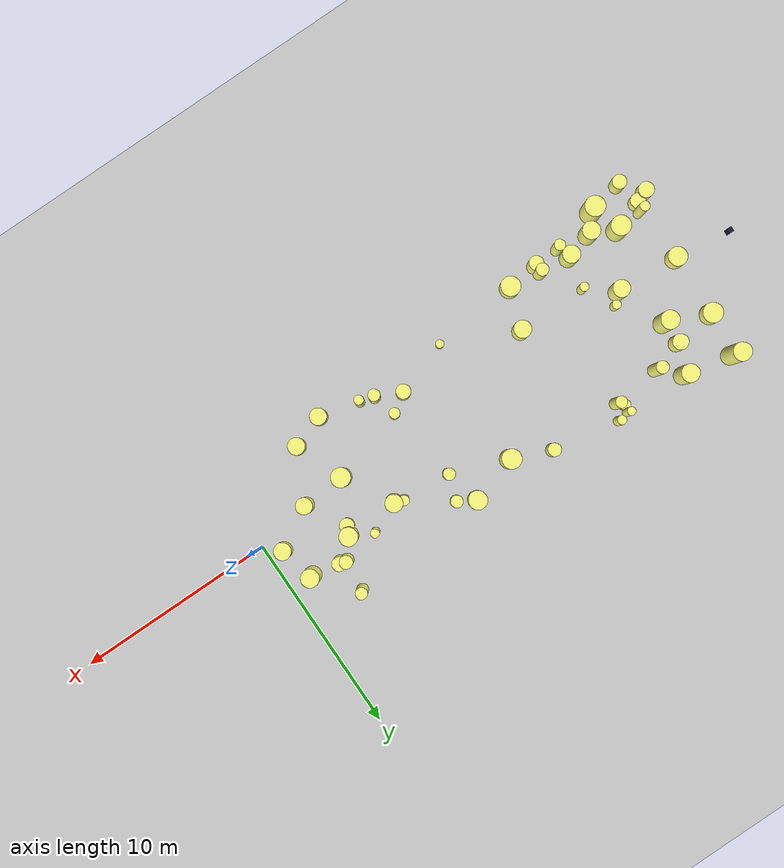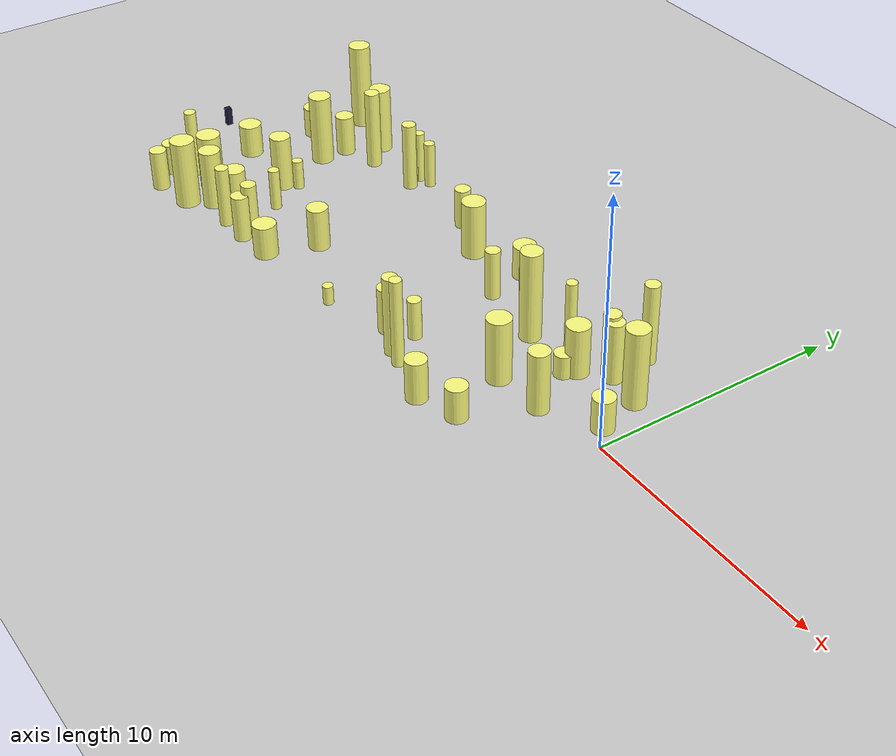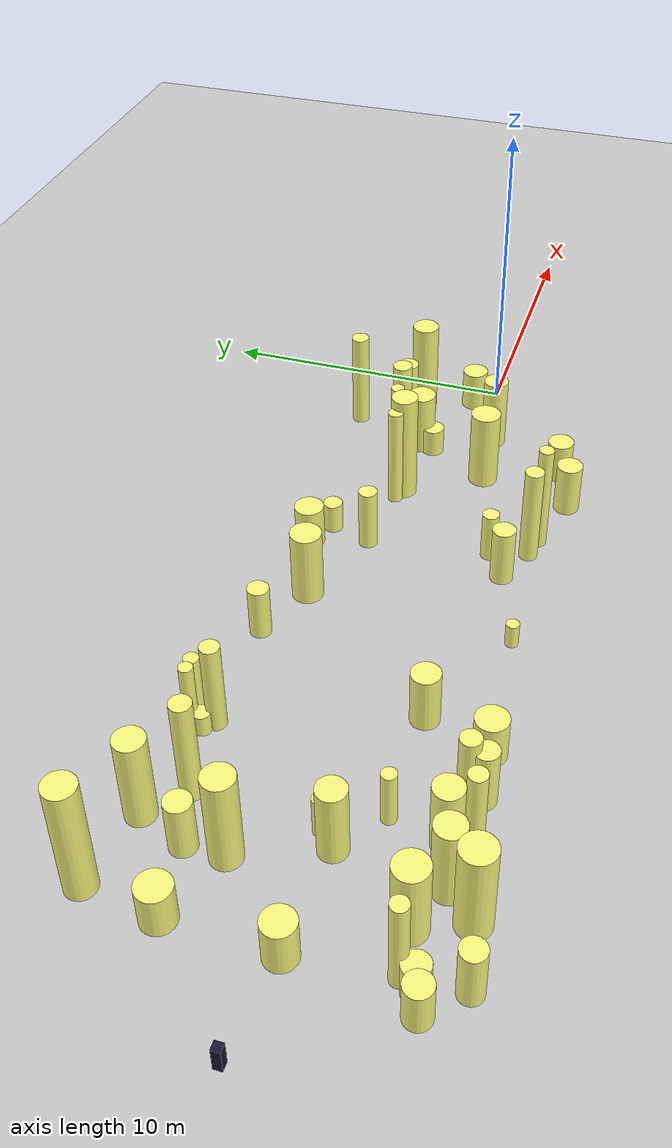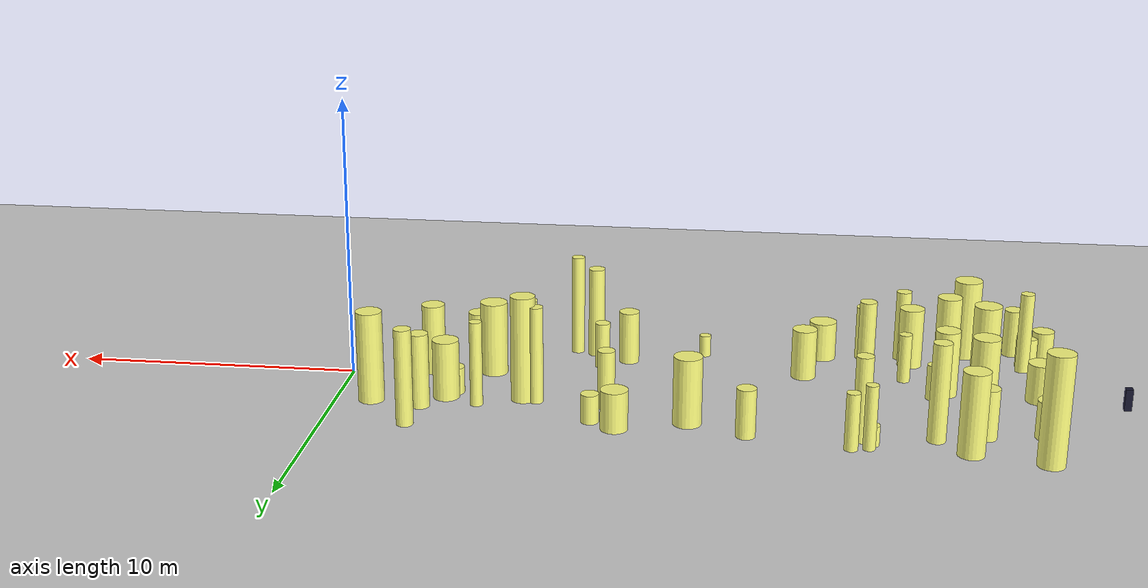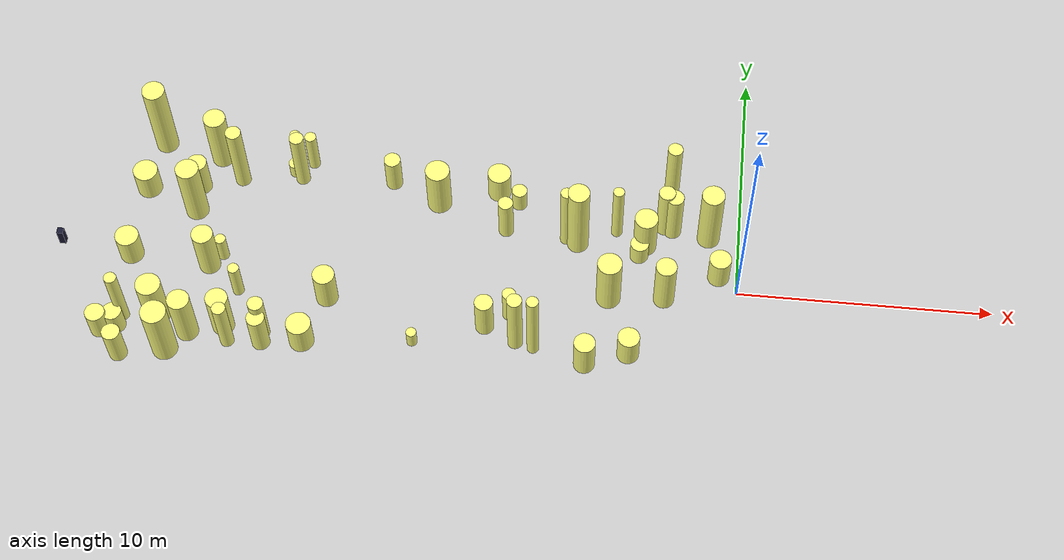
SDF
<sdf version="1.4">
 <world name="default">
  <include><uri>model://ground_plane</uri></include>
  <include><uri>model://sun</uri></include>
  <model name="forest">
   <static>true</static>
   <link name="cylinder2">
    <pose>-5.754748853354975 -3.6356995572683193 0.8611136780357529 0 0 0</pose>
    <visual name="visual">
     <geometry>
      <cylinder><radius>0.417394056659338</radius><length>1.7222273560715058</length></cylinder>
     </geometry>
     <material>
      <ambient>0.6 0.6 0.6 1</ambient>
      <diffuse>1 1 0.5 1</diffuse>
      <specular>0 0 0</specular>
      <emissive>0 0 0 1</emissive>
     </material>
    </visual>
    <collision name="collision">
     <geometry>
      <cylinder><radius>0.417394056659338</radius><length>1.7222273560715058</length></cylinder>
     </geometry>
     <max_contacts>0</max_contacts>
    </collision>
   </link>
   <link name="cylinder3">
    <pose>-22.554614542541916 -3.043304144231457 1.2346718837196298 0 0 0</pose>
    <visual name="visual">
     <geometry>
      <cylinder><radius>0.4905226006327724</radius><length>2.4693437674392595</length></cylinder>
     </geometry>
     <material>
      <ambient>0.6 0.6 0.6 1</ambient>
      <diffuse>1 1 0.5 1</diffuse>
      <specular>0 0 0</specular>
      <emissive>0 0 0 1</emissive>
     </material>
    </visual>
    <collision name="collision">
     <geometry>
      <cylinder><radius>0.4905226006327724</radius><length>2.4693437674392595</length></cylinder>
     </geometry>
     <max_contacts>0</max_contacts>
    </collision>
   </link>
   <link name="cylinder9">
    <pose>-23.904101613857705 -3.1530759208584644 1.4693353264752327 0 0 0</pose>
    <visual name="visual">
     <geometry>
      <cylinder><radius>0.24433035102363163</radius><length>2.9386706529504654</length></cylinder>
     </geometry>
     <material>
      <ambient>0.6 0.6 0.6 1</ambient>
      <diffuse>1 1 0.5 1</diffuse>
      <specular>0 0 0</specular>
      <emissive>0 0 0 1</emissive>
     </material>
    </visual>
    <collision name="collision">
     <geometry>
      <cylinder><radius>0.24433035102363163</radius><length>2.9386706529504654</length></cylinder>
     </geometry>
     <max_contacts>0</max_contacts>
    </collision>
   </link>
   <link name="cylinder11">
    <pose>-12.487149111359585 -3.2835647577086347 0.3931674047471566 0 0 0</pose>
    <visual name="visual">
     <geometry>
      <cylinder><radius>0.2045534972430673</radius><length>0.7863348094943132</length></cylinder>
     </geometry>
     <material>
      <ambient>0.6 0.6 0.6 1</ambient>
      <diffuse>1 1 0.5 1</diffuse>
      <specular>0 0 0</specular>
      <emissive>0 0 0 1</emissive>
     </material>
    </visual>
    <collision name="collision">
     <geometry>
      <cylinder><radius>0.2045534972430673</radius><length>0.7863348094943132</length></cylinder>
     </geometry>
     <max_contacts>0</max_contacts>
    </collision>
   </link>
   <link name="cylinder12">
    <pose>-19.909525238158977 -3.2473207207106745 1.0920424826775004 0 0 0</pose>
    <visual name="visual">
     <geometry>
      <cylinder><radius>0.4372468424831488</radius><length>2.1840849653550007</length></cylinder>
     </geometry>
     <material>
      <ambient>0.6 0.6 0.6 1</ambient>
      <diffuse>1 1 0.5 1</diffuse>
      <specular>0 0 0</specular>
      <emissive>0 0 0 1</emissive>
     </material>
    </visual>
    <collision name="collision">
     <geometry>
      <cylinder><radius>0.4372468424831488</radius><length>2.1840849653550007</length></cylinder>
     </geometry>
     <max_contacts>0</max_contacts>
    </collision>
   </link>
   <link name="cylinder13">
    <pose>-21.98805036154612 -4.456281456834889 1.4657374016018136 0 0 0</pose>
    <visual name="visual">
     <geometry>
      <cylinder><radius>0.49814442446754154</radius><length>2.9314748032036273</length></cylinder>
     </geometry>
     <material>
      <ambient>0.6 0.6 0.6 1</ambient>
      <diffuse>1 1 0.5 1</diffuse>
      <specular>0 0 0</specular>
      <emissive>0 0 0 1</emissive>
     </material>
    </visual>
    <collision name="collision">
     <geometry>
      <cylinder><radius>0.49814442446754154</radius><length>2.9314748032036273</length></cylinder>
     </geometry>
     <max_contacts>0</max_contacts>
    </collision>
   </link>
   <link name="cylinder14">
    <pose>-21.308032298656737 4.495210251003124 1.4383848407434416 0 0 0</pose>
    <visual name="visual">
     <geometry>
      <cylinder><radius>0.4465633740316827</radius><length>2.8767696814868833</length></cylinder>
     </geometry>
     <material>
      <ambient>0.6 0.6 0.6 1</ambient>
      <diffuse>1 1 0.5 1</diffuse>
      <specular>0 0 0</specular>
      <emissive>0 0 0 1</emissive>
     </material>
    </visual>
    <collision name="collision">
     <geometry>
      <cylinder><radius>0.4465633740316827</radius><length>2.8767696814868833</length></cylinder>
     </geometry>
     <max_contacts>0</max_contacts>
    </collision>
   </link>
   <link name="cylinder16">
    <pose>-9.798764212053829 3.8855375509682233 0.7028864098086872 0 0 0</pose>
    <visual name="visual">
     <geometry>
      <cylinder><radius>0.46580999178694366</radius><length>1.4057728196173744</length></cylinder>
     </geometry>
     <material>
      <ambient>0.6 0.6 0.6 1</ambient>
      <diffuse>1 1 0.5 1</diffuse>
      <specular>0 0 0</specular>
      <emissive>0 0 0 1</emissive>
     </material>
    </visual>
    <collision name="collision">
     <geometry>
      <cylinder><radius>0.46580999178694366</radius><length>1.4057728196173744</length></cylinder>
     </geometry>
     <max_contacts>0</max_contacts>
    </collision>
   </link>
   <link name="cylinder17">
    <pose>-24.08733993064421 -3.6108653907759747 0.5645090989712589 0 0 0</pose>
    <visual name="visual">
     <geometry>
      <cylinder><radius>0.37873455461479266</radius><length>1.1290181979425178</length></cylinder>
     </geometry>
     <material>
      <ambient>0.6 0.6 0.6 1</ambient>
      <diffuse>1 1 0.5 1</diffuse>
      <specular>0 0 0</specular>
      <emissive>0 0 0 1</emissive>
     </material>
    </visual>
    <collision name="collision">
     <geometry>
      <cylinder><radius>0.37873455461479266</radius><length>1.1290181979425178</length></cylinder>
     </geometry>
     <max_contacts>0</max_contacts>
    </collision>
   </link>
   <link name="cylinder18">
    <pose>-2.8648793312948158 -0.4965705589481839 1.2666190422965533 0 0 0</pose>
    <visual name="visual">
     <geometry>
      <cylinder><radius>0.4087606420837506</radius><length>2.5332380845931066</length></cylinder>
     </geometry>
     <material>
      <ambient>0.6 0.6 0.6 1</ambient>
      <diffuse>1 1 0.5 1</diffuse>
      <specular>0 0 0</specular>
      <emissive>0 0 0 1</emissive>
     </material>
    </visual>
    <collision name="collision">
     <geometry>
      <cylinder><radius>0.4087606420837506</radius><length>2.5332380845931066</length></cylinder>
     </geometry>
     <max_contacts>0</max_contacts>
    </collision>
   </link>
   <link name="cylinder19">
    <pose>-24.025993534648727 2.785799897097611 0.6539868889832356 0 0 0</pose>
    <visual name="visual">
     <geometry>
      <cylinder><radius>0.4966410289199009</radius><length>1.3079737779664713</length></cylinder>
     </geometry>
     <material>
      <ambient>0.6 0.6 0.6 1</ambient>
      <diffuse>1 1 0.5 1</diffuse>
      <specular>0 0 0</specular>
      <emissive>0 0 0 1</emissive>
     </material>
    </visual>
    <collision name="collision">
     <geometry>
      <cylinder><radius>0.4966410289199009</radius><length>1.3079737779664713</length></cylinder>
     </geometry>
     <max_contacts>0</max_contacts>
    </collision>
   </link>
   <link name="cylinder23">
    <pose>-23.755383899373843 -4.822070672983206 0.8719483692005128 0 0 0</pose>
    <visual name="visual">
     <geometry>
      <cylinder><radius>0.3529152888837135</radius><length>1.7438967384010255</length></cylinder>
     </geometry>
     <material>
      <ambient>0.6 0.6 0.6 1</ambient>
      <diffuse>1 1 0.5 1</diffuse>
      <specular>0 0 0</specular>
      <emissive>0 0 0 1</emissive>
     </material>
    </visual>
    <collision name="collision">
     <geometry>
      <cylinder><radius>0.3529152888837135</radius><length>1.7438967384010255</length></cylinder>
     </geometry>
     <max_contacts>0</max_contacts>
    </collision>
   </link>
   <link name="cylinder25">
    <pose>-16.065959980252472 -1.6298136352520673 0.9016604387363361 0 0 0</pose>
    <visual name="visual">
     <geometry>
      <cylinder><radius>0.4349925042361094</radius><length>1.8033208774726721</length></cylinder>
     </geometry>
     <material>
      <ambient>0.6 0.6 0.6 1</ambient>
      <diffuse>1 1 0.5 1</diffuse>
      <specular>0 0 0</specular>
      <emissive>0 0 0 1</emissive>
     </material>
    </visual>
    <collision name="collision">
     <geometry>
      <cylinder><radius>0.4349925042361094</radius><length>1.8033208774726721</length></cylinder>
     </geometry>
     <max_contacts>0</max_contacts>
    </collision>
   </link>
   <link name="cylinder26">
    <pose>-6.442579740546456 1.7434035630056837 1.8863791940662549 0 0 0</pose>
    <visual name="visual">
     <geometry>
      <cylinder><radius>0.42650104526686883</radius><length>3.7727583881325097</length></cylinder>
     </geometry>
     <material>
      <ambient>0.6 0.6 0.6 1</ambient>
      <diffuse>1 1 0.5 1</diffuse>
      <specular>0 0 0</specular>
      <emissive>0 0 0 1</emissive>
     </material>
    </visual>
    <collision name="collision">
     <geometry>
      <cylinder><radius>0.42650104526686883</radius><length>3.7727583881325097</length></cylinder>
     </geometry>
     <max_contacts>0</max_contacts>
    </collision>
   </link>
   <link name="cylinder28">
    <pose>-21.263672964767206 -3.6311780743026945 1.2680707339227801 0 0 0</pose>
    <visual name="visual">
     <geometry>
      <cylinder><radius>0.4388341553206505</radius><length>2.5361414678455603</length></cylinder>
     </geometry>
     <material>
      <ambient>0.6 0.6 0.6 1</ambient>
      <diffuse>1 1 0.5 1</diffuse>
      <specular>0 0 0</specular>
      <emissive>0 0 0 1</emissive>
     </material>
    </visual>
    <collision name="collision">
     <geometry>
      <cylinder><radius>0.4388341553206505</radius><length>2.5361414678455603</length></cylinder>
     </geometry>
     <max_contacts>0</max_contacts>
    </collision>
   </link>
   <link name="cylinder29">
    <pose>-14.127295966950221 3.935134634446454 0.853269335998126 0 0 0</pose>
    <visual name="visual">
     <geometry>
      <cylinder><radius>0.33078512619020045</radius><length>1.706538671996252</length></cylinder>
     </geometry>
     <material>
      <ambient>0.6 0.6 0.6 1</ambient>
      <diffuse>1 1 0.5 1</diffuse>
      <specular>0 0 0</specular>
      <emissive>0 0 0 1</emissive>
     </material>
    </visual>
    <collision name="collision">
     <geometry>
      <cylinder><radius>0.33078512619020045</radius><length>1.706538671996252</length></cylinder>
     </geometry>
     <max_contacts>0</max_contacts>
    </collision>
   </link>
   <link name="cylinder34">
    <pose>-3.7671409269096117 1.8649424314652832 1.054442484710619 0 0 0</pose>
    <visual name="visual">
     <geometry>
      <cylinder><radius>0.46116832143360736</radius><length>2.108884969421238</length></cylinder>
     </geometry>
     <material>
      <ambient>0.6 0.6 0.6 1</ambient>
      <diffuse>1 1 0.5 1</diffuse>
      <specular>0 0 0</specular>
      <emissive>0 0 0 1</emissive>
     </material>
    </visual>
    <collision name="collision">
     <geometry>
      <cylinder><radius>0.46116832143360736</radius><length>2.108884969421238</length></cylinder>
     </geometry>
     <max_contacts>0</max_contacts>
    </collision>
   </link>
   <link name="cylinder35">
    <pose>-0.7602056430930197 0.693844699559337 0.7039703608118021 0 0 0</pose>
    <visual name="visual">
     <geometry>
      <cylinder><radius>0.43070909559110426</radius><length>1.4079407216236042</length></cylinder>
     </geometry>
     <material>
      <ambient>0.6 0.6 0.6 1</ambient>
      <diffuse>1 1 0.5 1</diffuse>
      <specular>0 0 0</specular>
      <emissive>0 0 0 1</emissive>
     </material>
    </visual>
    <collision name="collision">
     <geometry>
      <cylinder><radius>0.43070909559110426</radius><length>1.4079407216236042</length></cylinder>
     </geometry>
     <max_contacts>0</max_contacts>
    </collision>
   </link>
   <link name="cylinder37">
    <pose>-4.921027424248525 2.4121538878717725 1.5081504087877833 0 0 0</pose>
    <visual name="visual">
     <geometry>
      <cylinder><radius>0.21834722863311687</radius><length>3.0163008175755666</length></cylinder>
     </geometry>
     <material>
      <ambient>0.6 0.6 0.6 1</ambient>
      <diffuse>1 1 0.5 1</diffuse>
      <specular>0 0 0</specular>
      <emissive>0 0 0 1</emissive>
     </material>
    </visual>
    <collision name="collision">
     <geometry>
      <cylinder><radius>0.21834722863311687</radius><length>3.0163008175755666</length></cylinder>
     </geometry>
     <max_contacts>0</max_contacts>
    </collision>
   </link>
   <link name="cylinder39">
    <pose>-20.93103883253957 -0.5839638680604544 1.1809114135723586 0 0 0</pose>
    <visual name="visual">
     <geometry>
      <cylinder><radius>0.42660397344079437</radius><length>2.3618228271447173</length></cylinder>
     </geometry>
     <material>
      <ambient>0.6 0.6 0.6 1</ambient>
      <diffuse>1 1 0.5 1</diffuse>
      <specular>0 0 0</specular>
      <emissive>0 0 0 1</emissive>
     </material>
    </visual>
    <collision name="collision">
     <geometry>
      <cylinder><radius>0.42660397344079437</radius><length>2.3618228271447173</length></cylinder>
     </geometry>
     <max_contacts>0</max_contacts>
    </collision>
   </link>
   <link name="cylinder42">
    <pose>-20.3046763870438 3.518755402546116 1.7072282281849482 0 0 0</pose>
    <visual name="visual">
     <geometry>
      <cylinder><radius>0.31130974515695226</radius><length>3.4144564563698965</length></cylinder>
     </geometry>
     <material>
      <ambient>0.6 0.6 0.6 1</ambient>
      <diffuse>1 1 0.5 1</diffuse>
      <specular>0 0 0</specular>
      <emissive>0 0 0 1</emissive>
     </material>
    </visual>
    <collision name="collision">
     <geometry>
      <cylinder><radius>0.31130974515695226</radius><length>3.4144564563698965</length></cylinder>
     </geometry>
     <max_contacts>0</max_contacts>
    </collision>
   </link>
   <link name="cylinder43">
    <pose>-3.960138168719922 1.3981410458650423 0.4783969110256533 0 0 0</pose>
    <visual name="visual">
     <geometry>
      <cylinder><radius>0.36497700427004953</radius><length>0.9567938220513066</length></cylinder>
     </geometry>
     <material>
      <ambient>0.6 0.6 0.6 1</ambient>
      <diffuse>1 1 0.5 1</diffuse>
      <specular>0 0 0</specular>
      <emissive>0 0 0 1</emissive>
     </material>
    </visual>
    <collision name="collision">
     <geometry>
      <cylinder><radius>0.36497700427004953</radius><length>0.9567938220513066</length></cylinder>
     </geometry>
     <max_contacts>0</max_contacts>
    </collision>
   </link>
   <link name="cylinder44">
    <pose>-9.354849034871032 2.0879329908388575 1.0376829949513398 0 0 0</pose>
    <visual name="visual">
     <geometry>
      <cylinder><radius>0.2981524959668884</radius><length>2.0753659899026795</length></cylinder>
     </geometry>
     <material>
      <ambient>0.6 0.6 0.6 1</ambient>
      <diffuse>1 1 0.5 1</diffuse>
      <specular>0 0 0</specular>
      <emissive>0 0 0 1</emissive>
     </material>
    </visual>
    <collision name="collision">
     <geometry>
      <cylinder><radius>0.2981524959668884</radius><length>2.0753659899026795</length></cylinder>
     </geometry>
     <max_contacts>0</max_contacts>
    </collision>
   </link>
   <link name="cylinder45">
    <pose>-6.920800251284909 1.900744533748453 1.7276016508489844 0 0 0</pose>
    <visual name="visual">
     <geometry>
      <cylinder><radius>0.24138930201298717</radius><length>3.455203301697969</length></cylinder>
     </geometry>
     <material>
      <ambient>0.6 0.6 0.6 1</ambient>
      <diffuse>1 1 0.5 1</diffuse>
      <specular>0 0 0</specular>
      <emissive>0 0 0 1</emissive>
     </material>
    </visual>
    <collision name="collision">
     <geometry>
      <cylinder><radius>0.24138930201298717</radius><length>3.455203301697969</length></cylinder>
     </geometry>
     <max_contacts>0</max_contacts>
    </collision>
   </link>
   <link name="cylinder49">
    <pose>-18.1016221116858 4.441922086407754 1.1128271327998167 0 0 0</pose>
    <visual name="visual">
     <geometry>
      <cylinder><radius>0.20882252836478943</radius><length>2.2256542655996334</length></cylinder>
     </geometry>
     <material>
      <ambient>0.6 0.6 0.6 1</ambient>
      <diffuse>1 1 0.5 1</diffuse>
      <specular>0 0 0</specular>
      <emissive>0 0 0 1</emissive>
     </material>
    </visual>
    <collision name="collision">
     <geometry>
      <cylinder><radius>0.20882252836478943</radius><length>2.2256542655996334</length></cylinder>
     </geometry>
     <max_contacts>0</max_contacts>
    </collision>
   </link>
   <link name="cylinder51">
    <pose>-9.748749280002844 -2.35167360003644 0.9599845280778108 0 0 0</pose>
    <visual name="visual">
     <geometry>
      <cylinder><radius>0.3630535850719547</radius><length>1.9199690561556215</length></cylinder>
     </geometry>
     <material>
      <ambient>0.6 0.6 0.6 1</ambient>
      <diffuse>1 1 0.5 1</diffuse>
      <specular>0 0 0</specular>
      <emissive>0 0 0 1</emissive>
     </material>
    </visual>
    <collision name="collision">
     <geometry>
      <cylinder><radius>0.3630535850719547</radius><length>1.9199690561556215</length></cylinder>
     </geometry>
     <max_contacts>0</max_contacts>
    </collision>
   </link>
   <link name="cylinder52">
    <pose>-8.49063309788512 -2.934319017824949 1.6559985217201434 0 0 0</pose>
    <visual name="visual">
     <geometry>
      <cylinder><radius>0.2960132461056362</radius><length>3.311997043440287</length></cylinder>
     </geometry>
     <material>
      <ambient>0.6 0.6 0.6 1</ambient>
      <diffuse>1 1 0.5 1</diffuse>
      <specular>0 0 0</specular>
      <emissive>0 0 0 1</emissive>
     </material>
    </visual>
    <collision name="collision">
     <geometry>
      <cylinder><radius>0.2960132461056362</radius><length>3.311997043440287</length></cylinder>
     </geometry>
     <max_contacts>0</max_contacts>
    </collision>
   </link>
   <link name="cylinder56">
    <pose>-8.938486943101697 3.388996790357263 0.505727104320048 0 0 0</pose>
    <visual name="visual">
     <geometry>
      <cylinder><radius>0.30769054493596926</radius><length>1.011454208640096</length></cylinder>
     </geometry>
     <material>
      <ambient>0.6 0.6 0.6 1</ambient>
      <diffuse>1 1 0.5 1</diffuse>
      <specular>0 0 0</specular>
      <emissive>0 0 0 1</emissive>
     </material>
    </visual>
    <collision name="collision">
     <geometry>
      <cylinder><radius>0.30769054493596926</radius><length>1.011454208640096</length></cylinder>
     </geometry>
     <max_contacts>0</max_contacts>
    </collision>
   </link>
   <link name="cylinder57">
    <pose>-18.331109688945347 -3.8390072303231526 0.9790099665448058 0 0 0</pose>
    <visual name="visual">
     <geometry>
      <cylinder><radius>0.35577886355971566</radius><length>1.9580199330896115</length></cylinder>
     </geometry>
     <material>
      <ambient>0.6 0.6 0.6 1</ambient>
      <diffuse>1 1 0.5 1</diffuse>
      <specular>0 0 0</specular>
      <emissive>0 0 0 1</emissive>
     </material>
    </visual>
    <collision name="collision">
     <geometry>
      <cylinder><radius>0.35577886355971566</radius><length>1.9580199330896115</length></cylinder>
     </geometry>
     <max_contacts>0</max_contacts>
    </collision>
   </link>
   <link name="cylinder58">
    <pose>-21.896229772252173 1.8964191180577306 1.5295609664156251 0 0 0</pose>
    <visual name="visual">
     <geometry>
      <cylinder><radius>0.4603595754407834</radius><length>3.0591219328312502</length></cylinder>
     </geometry>
     <material>
      <ambient>0.6 0.6 0.6 1</ambient>
      <diffuse>1 1 0.5 1</diffuse>
      <specular>0 0 0</specular>
      <emissive>0 0 0 1</emissive>
     </material>
    </visual>
    <collision name="collision">
     <geometry>
      <cylinder><radius>0.4603595754407834</radius><length>3.0591219328312502</length></cylinder>
     </geometry>
     <max_contacts>0</max_contacts>
    </collision>
   </link>
   <link name="cylinder60">
    <pose>-3.0268642574715834 2.777510968802174 1.3226630937897914 0 0 0</pose>
    <visual name="visual">
     <geometry>
      <cylinder><radius>0.3285361818560224</radius><length>2.645326187579583</length></cylinder>
     </geometry>
     <material>
      <ambient>0.6 0.6 0.6 1</ambient>
      <diffuse>1 1 0.5 1</diffuse>
      <specular>0 0 0</specular>
      <emissive>0 0 0 1</emissive>
     </material>
    </visual>
    <collision name="collision">
     <geometry>
      <cylinder><radius>0.3285361818560224</radius><length>2.645326187579583</length></cylinder>
     </geometry>
     <max_contacts>0</max_contacts>
    </collision>
   </link>
   <link name="cylinder61">
    <pose>-23.726220727643053 4.978314577383204 1.894009790334053 0 0 0</pose>
    <visual name="visual">
     <geometry>
      <cylinder><radius>0.45204750878355776</radius><length>3.788019580668106</length></cylinder>
     </geometry>
     <material>
      <ambient>0.6 0.6 0.6 1</ambient>
      <diffuse>1 1 0.5 1</diffuse>
      <specular>0 0 0</specular>
      <emissive>0 0 0 1</emissive>
     </material>
    </visual>
    <collision name="collision">
     <geometry>
      <cylinder><radius>0.45204750878355776</radius><length>3.788019580668106</length></cylinder>
     </geometry>
     <max_contacts>0</max_contacts>
    </collision>
   </link>
   <link name="cylinder62">
    <pose>-2.8407987645150357 4.362691860271745 1.68806893133025 0 0 0</pose>
    <visual name="visual">
     <geometry><cylinder><radius>0.2935331292060626</radius><length>3.3761378626605</length></cylinder></geometry>
     <material>
      <ambient>0.6 0.6 0.6 1</ambient>
      <diffuse>1 1 0.5 1</diffuse>
      <specular>0 0 0</specular>
      <emissive>0 0 0 1</emissive>
     </material>
    </visual>
    <collision name="collision">
     <geometry><cylinder><radius>0.2935331292060626</radius><length>3.3761378626605</length></cylinder></geometry>
     <max_contacts>0</max_contacts>
    </collision>
   </link>
   <link name="cylinder65">
    <pose>-19.648475084056656 -3.897515843939799 1.2951623564588393 0 0 0</pose>
    <visual name="visual">
     <geometry>
      <cylinder><radius>0.27088090534475084</radius><length>2.5903247129176785</length></cylinder>
     </geometry>
     <material>
      <ambient>0.6 0.6 0.6 1</ambient>
      <diffuse>1 1 0.5 1</diffuse>
      <specular>0 0 0</specular>
      <emissive>0 0 0 1</emissive>
     </material>
    </visual>
    <collision name="collision">
     <geometry>
      <cylinder><radius>0.27088090534475084</radius><length>2.5903247129176785</length></cylinder>
     </geometry>
     <max_contacts>0</max_contacts>
    </collision>
   </link>
   <link name="cylinder66">
    <pose>-2.7015531565237545 2.6677851988280246 1.2639019151067434 0 0 0</pose>
    <visual name="visual">
     <geometry>
      <cylinder><radius>0.3469841596075448</radius><length>2.527803830213487</length></cylinder>
     </geometry>
     <material>
      <ambient>0.6 0.6 0.6 1</ambient>
      <diffuse>1 1 0.5 1</diffuse>
      <specular>0 0 0</specular>
      <emissive>0 0 0 1</emissive>
     </material>
    </visual>
    <collision name="collision">
     <geometry>
      <cylinder><radius>0.3469841596075448</radius><length>2.527803830213487</length></cylinder>
     </geometry>
     <max_contacts>0</max_contacts>
    </collision>
   </link>
   <link name="cylinder67">
    <pose>-17.87065975110554 3.794501971459825 1.4747507580194181 0 0 0</pose>
    <visual name="visual">
     <geometry>
      <cylinder><radius>0.2859565620927375</radius><length>2.9495015160388363</length></cylinder>
     </geometry>
     <material>
      <ambient>0.6 0.6 0.6 1</ambient>
      <diffuse>1 1 0.5 1</diffuse>
      <specular>0 0 0</specular>
      <emissive>0 0 0 1</emissive>
     </material>
    </visual>
    <collision name="collision">
     <geometry>
      <cylinder><radius>0.2859565620927375</radius><length>2.9495015160388363</length></cylinder>
     </geometry>
     <max_contacts>0</max_contacts>
    </collision>
   </link>
   <link name="cylinder70">
    <pose>-20.461877068114163 -0.09690217232687104 0.6329866240607532 0 0 0</pose>
    <visual name="visual">
     <geometry>
      <cylinder><radius>0.2200409901136681</radius><length>1.2659732481215065</length></cylinder>
     </geometry>
     <material>
      <ambient>0.6 0.6 0.6 1</ambient>
      <diffuse>1 1 0.5 1</diffuse>
      <specular>0 0 0</specular>
      <emissive>0 0 0 1</emissive>
     </material>
    </visual>
    <collision name="collision">
     <geometry>
      <cylinder><radius>0.2200409901136681</radius><length>1.2659732481215065</length></cylinder>
     </geometry>
     <max_contacts>0</max_contacts>
    </collision>
   </link>
   <link name="cylinder72">
    <pose>-18.187080102317104 4.08161035114836 0.3446395458834871 0 0 0</pose>
    <visual name="visual">
     <geometry>
      <cylinder><radius>0.2645298065947669</radius><length>0.6892790917669742</length></cylinder>
     </geometry>
     <material>
      <ambient>0.6 0.6 0.6 1</ambient>
      <diffuse>1 1 0.5 1</diffuse>
      <specular>0 0 0</specular>
      <emissive>0 0 0 1</emissive>
     </material>
    </visual>
    <collision name="collision">
     <geometry>
      <cylinder><radius>0.2645298065947669</radius><length>0.6892790917669742</length></cylinder>
     </geometry>
     <max_contacts>0</max_contacts>
    </collision>
   </link>
   <link name="cylinder73">
    <pose>-18.358680502030083 -3.413722845675715 1.1565731529891021 0 0 0</pose>
    <visual name="visual">
     <geometry>
      <cylinder><radius>0.3081853388028638</radius><length>2.3131463059782043</length></cylinder>
     </geometry>
     <material>
      <ambient>0.6 0.6 0.6 1</ambient>
      <diffuse>1 1 0.5 1</diffuse>
      <specular>0 0 0</specular>
      <emissive>0 0 0 1</emissive>
     </material>
    </visual>
    <collision name="collision">
     <geometry>
      <cylinder><radius>0.3081853388028638</radius><length>2.3131463059782043</length></cylinder>
     </geometry>
     <max_contacts>0</max_contacts>
    </collision>
   </link>
   <link name="cylinder75">
    <pose>-21.90930006765772 3.055555561866788 0.8763882939753611 0 0 0</pose>
    <visual name="visual">
     <geometry>
      <cylinder><radius>0.390986700928195</radius><length>1.7527765879507222</length></cylinder>
     </geometry>
     <material>
      <ambient>0.6 0.6 0.6 1</ambient>
      <diffuse>1 1 0.5 1</diffuse>
      <specular>0 0 0</specular>
      <emissive>0 0 0 1</emissive>
     </material>
    </visual>
    <collision name="collision">
     <geometry>
      <cylinder><radius>0.390986700928195</radius><length>1.7527765879507222</length></cylinder>
     </geometry>
     <max_contacts>0</max_contacts>
    </collision>
   </link>
   <link name="cylinder76">
    <pose>-17.521617342819233 4.551626822834237 0.9862553151025427 0 0 0</pose>
    <visual name="visual">
     <geometry>
      <cylinder><radius>0.22901528565771323</radius><length>1.9725106302050854</length></cylinder>
     </geometry>
     <material>
      <ambient>0.6 0.6 0.6 1</ambient>
      <diffuse>1 1 0.5 1</diffuse>
      <specular>0 0 0</specular>
      <emissive>0 0 0 1</emissive>
     </material>
    </visual>
    <collision name="collision">
     <geometry>
      <cylinder><radius>0.22901528565771323</radius><length>1.9725106302050854</length></cylinder>
     </geometry>
     <max_contacts>0</max_contacts>
    </collision>
   </link>
   <link name="cylinder79">
    <pose>-1.2468438973416696 2.447856436040638 1.619041800611392 0 0 0</pose>
    <visual name="visual">
     <geometry>
      <cylinder><radius>0.4487672097683342</radius><length>3.238083601222784</length></cylinder>
     </geometry>
     <material>
      <ambient>0.6 0.6 0.6 1</ambient>
      <diffuse>1 1 0.5 1</diffuse>
      <specular>0 0 0</specular>
      <emissive>0 0 0 1</emissive>
     </material>
    </visual>
    <collision name="collision">
     <geometry>
      <cylinder><radius>0.4487672097683342</radius><length>3.238083601222784</length></cylinder>
     </geometry>
     <max_contacts>0</max_contacts>
    </collision>
   </link>
   <link name="cylinder81">
    <pose>-8.833088923166965 -1.742397071398838 0.8285484325278286 0 0 0</pose>
    <visual name="visual">
     <geometry>
      <cylinder><radius>0.26814701729367074</radius><length>1.6570968650556572</length></cylinder>
     </geometry>
     <material>
      <ambient>0.6 0.6 0.6 1</ambient>
      <diffuse>1 1 0.5 1</diffuse>
      <specular>0 0 0</specular>
      <emissive>0 0 0 1</emissive>
     </material>
    </visual>
    <collision name="collision">
     <geometry>
      <cylinder><radius>0.26814701729367074</radius><length>1.6570968650556572</length></cylinder>
     </geometry>
     <max_contacts>0</max_contacts>
    </collision>
   </link>
   <link name="cylinder84">
    <pose>-24.672684547322955 -3.8230188407388965 0.662173665513444 0 0 0</pose>
    <visual name="visual">
     <geometry>
      <cylinder><radius>0.3886691133291393</radius><length>1.324347331026888</length></cylinder>
     </geometry>
     <material>
      <ambient>0.6 0.6 0.6 1</ambient>
      <diffuse>1 1 0.5 1</diffuse>
      <specular>0 0 0</specular>
      <emissive>0 0 0 1</emissive>
     </material>
    </visual>
    <collision name="collision">
     <geometry>
      <cylinder><radius>0.3886691133291393</radius><length>1.324347331026888</length></cylinder>
     </geometry>
     <max_contacts>0</max_contacts>
    </collision>
   </link>
   <link name="cylinder85">
    <pose>-19.596878788803238 -1.6427079683224886 0.8793490305748979 0 0 0</pose>
    <visual name="visual">
     <geometry>
      <cylinder><radius>0.22318880283655732</radius><length>1.7586980611497958</length></cylinder>
     </geometry>
     <material>
      <ambient>0.6 0.6 0.6 1</ambient>
      <diffuse>1 1 0.5 1</diffuse>
      <specular>0 0 0</specular>
      <emissive>0 0 0 1</emissive>
     </material>
    </visual>
    <collision name="collision">
     <geometry>
      <cylinder><radius>0.22318880283655732</radius><length>1.7586980611497958</length></cylinder>
     </geometry>
     <max_contacts>0</max_contacts>
    </collision>
   </link>
   <link name="cylinder88">
    <pose>-24.1210705880358 -0.36020861516189484 0.7002130622904513 0 0 0</pose>
    <visual name="visual">
     <geometry>
      <cylinder><radius>0.471211671093553</radius><length>1.4004261245809027</length></cylinder>
     </geometry>
     <material>
      <ambient>0.6 0.6 0.6 1</ambient>
      <diffuse>1 1 0.5 1</diffuse>
      <specular>0 0 0</specular>
      <emissive>0 0 0 1</emissive>
     </material>
    </visual>
    <collision name="collision">
     <geometry>
      <cylinder><radius>0.471211671093553</radius><length>1.4004261245809027</length></cylinder>
     </geometry>
     <max_contacts>0</max_contacts>
    </collision>
   </link>
   <link name="cylinder89">
    <pose>-12.17340972377089 3.140113987901662 1.2034171519775385 0 0 0</pose>
    <visual name="visual">
     <geometry>
      <cylinder><radius>0.48607448052335595</radius><length>2.406834303955077</length></cylinder>
     </geometry>
     <material>
      <ambient>0.6 0.6 0.6 1</ambient>
      <diffuse>1 1 0.5 1</diffuse>
      <specular>0 0 0</specular>
      <emissive>0 0 0 1</emissive>
     </material>
    </visual>
    <collision name="collision">
     <geometry>
      <cylinder><radius>0.48607448052335595</radius><length>2.406834303955077</length></cylinder>
     </geometry>
     <max_contacts>0</max_contacts>
    </collision>
   </link>
   <link name="cylinder91">
    <pose>-16.768539394580216 -3.63656453404385 0.7055330186549944 0 0 0</pose>
    <visual name="visual">
     <geometry>
      <cylinder><radius>0.48904078579922805</radius><length>1.4110660373099888</length></cylinder>
     </geometry>
     <material>
      <ambient>0.6 0.6 0.6 1</ambient>
      <diffuse>1 1 0.5 1</diffuse>
      <specular>0 0 0</specular>
      <emissive>0 0 0 1</emissive>
     </material>
    </visual>
    <collision name="collision">
     <geometry>
      <cylinder><radius>0.48904078579922805</radius><length>1.4110660373099888</length></cylinder>
     </geometry>
     <max_contacts>0</max_contacts>
    </collision>
   </link>
   <link name="cylinder94">
    <pose>-5.042982293300163 -0.6431989527018906 1.3341203961685424 0 0 0</pose>
    <visual name="visual">
     <geometry>
      <cylinder><radius>0.4817541880547473</radius><length>2.6682407923370848</length></cylinder>
     </geometry>
     <material>
      <ambient>0.6 0.6 0.6 1</ambient>
      <diffuse>1 1 0.5 1</diffuse>
      <specular>0 0 0</specular>
      <emissive>0 0 0 1</emissive>
     </material>
    </visual>
    <collision name="collision">
     <geometry>
      <cylinder><radius>0.4817541880547473</radius><length>2.6682407923370848</length></cylinder>
     </geometry>
     <max_contacts>0</max_contacts>
    </collision>
   </link>
   <link name="cylinder95">
    <pose>-4.100275491498088 -3.0605274089779977 0.6950329881071031 0 0 0</pose>
    <visual name="visual">
     <geometry>
      <cylinder><radius>0.42783001407869026</radius><length>1.3900659762142062</length></cylinder>
     </geometry>
     <material>
      <ambient>0.6 0.6 0.6 1</ambient>
      <diffuse>1 1 0.5 1</diffuse>
      <specular>0 0 0</specular>
      <emissive>0 0 0 1</emissive>
     </material>
    </visual>
    <collision name="collision">
     <geometry>
      <cylinder><radius>0.42783001407869026</radius><length>1.3900659762142062</length></cylinder>
     </geometry>
     <max_contacts>0</max_contacts>
    </collision>
   </link>
   <link name="cylinder99">
    <pose>-7.781472037499377 -3.130714791797231 1.8348749081040958 0 0 0</pose>
    <visual name="visual">
     <geometry>
      <cylinder><radius>0.23561866450744678</radius><length>3.6697498162081916</length></cylinder>
     </geometry>
     <material>
      <ambient>0.6 0.6 0.6 1</ambient>
      <diffuse>1 1 0.5 1</diffuse>
      <specular>0 0 0</specular>
      <emissive>0 0 0 1</emissive>
     </material>
    </visual>
    <collision name="collision">
     <geometry>
      <cylinder><radius>0.23561866450744678</radius><length>3.6697498162081916</length></cylinder>
     </geometry>
     <max_contacts>0</max_contacts>
    </collision>
   </link>
   <link name="cube3">
    <pose>-27.0 0.0 0.25 0 0 0</pose>
    <visual name="visual">
     <geometry><box><size>0.25 0.25 1.0</size></box></geometry>
     <material>
      <ambient>0.1 0.1 0.1 1</ambient>
      <diffuse>0.1 0.1 0.2 1</diffuse>
      <specular>0 0 0</specular>
      <emissive>0 0 0 1</emissive>
     </material>
    </visual>
    <collision name="collision">
     <geometry><box><size>0.25 0.25 1.0</size></box></geometry>
     <max_contacts>0</max_contacts>
    </collision>
   </link>
  </model>
 </world>
</sdf>
